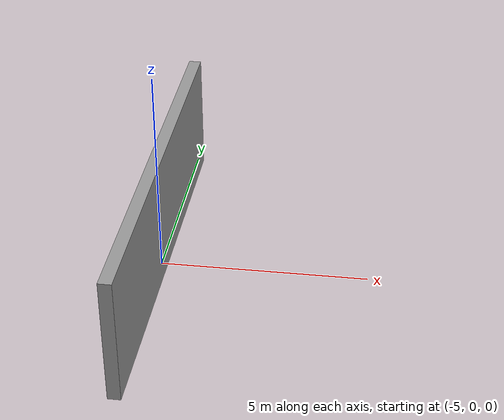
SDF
<?xml version="1.0"?>
<sdf version="1.7">
  <model name="wall_1">
    <pose>-5 0 1.5 0 0 0</pose>
    <link name="link">
      <collision name="collision">
        <geometry>
          <box>
            <size>0.3 10 3</size>
          </box>
        </geometry>
      </collision>
      <visual name="visual">
        <geometry>
          <box>
            <size>0.3 10 3</size>
          </box>
        </geometry>
        <material>
          <ambient>0.6 0.6 0.6 1</ambient>
          <diffuse>0.6 0.6 0.6 1</diffuse>
        </material>
      </visual>
    </link>
  </model>
</sdf>
